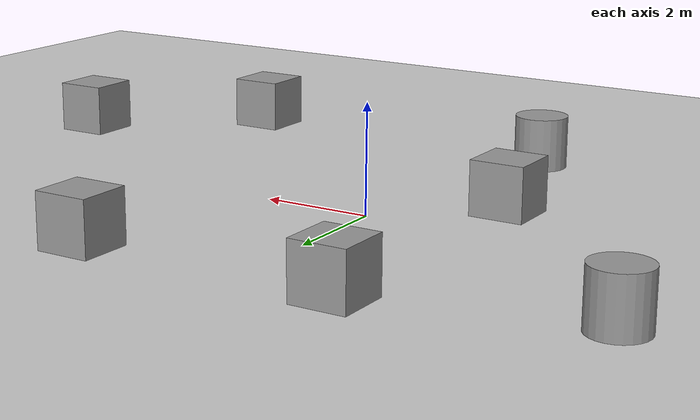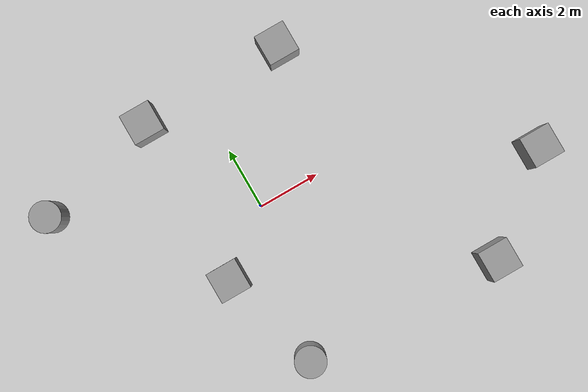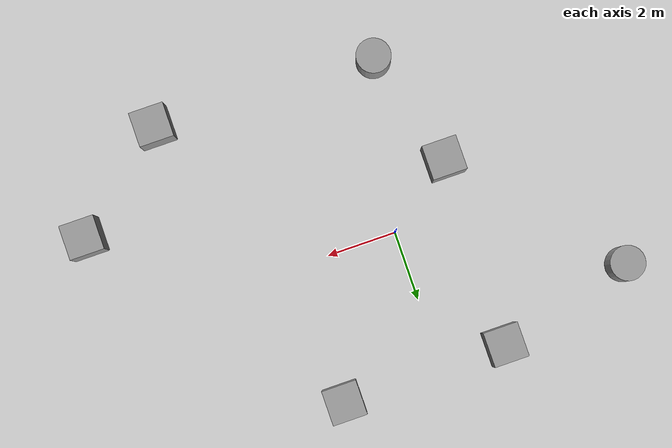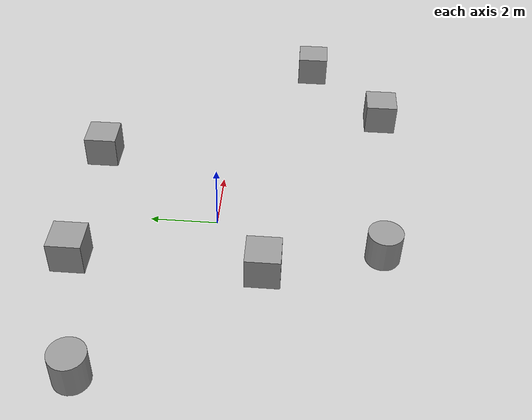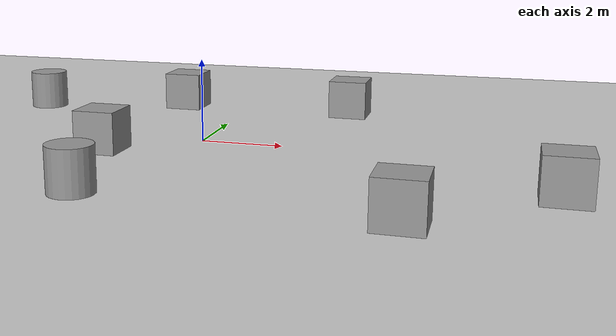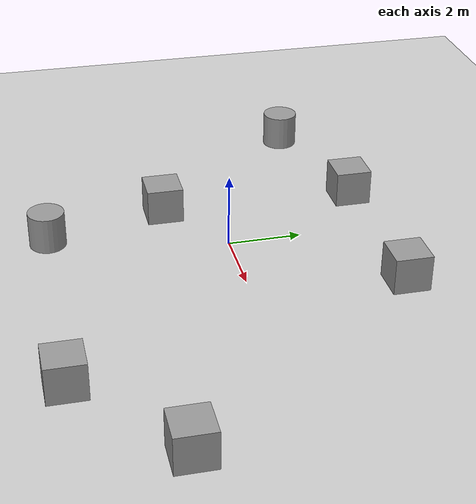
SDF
<sdf version="1.6">
 <world name="default">
  <light name="sun" type="directional">
   <pose>0 0 10 0 -0 0</pose>
   <diffuse>0.8 0.8 0.8 1</diffuse>
   <specular>0.1 0.1 0.1 1</specular>
   <attenuation>
    <range>1000</range>
    <constant>0.9</constant>
    <linear>0.01</linear>
    <quadratic>0.001</quadratic>
   </attenuation>
   <direction>-0.5 0.5 -1</direction>
  </light>
  <model name="ground_plane">
   <static>1</static>
   <link name="link">
    <collision name="collision">
     <geometry><plane><normal>0 0 1</normal><size>100 100</size></plane></geometry>
     <surface><friction><ode><mu>100</mu><mu2>50</mu2></ode></friction></surface>
    </collision>
    <visual name="visual">
     <cast_shadows>0</cast_shadows>
     <geometry><plane><normal>0 0 1</normal><size>100 100</size></plane></geometry>
     <material>
      <script><uri>file://media/materials/scripts/gazebo.material</uri><name>Gazebo/Grey</name></script>
     </material>
    </visual>
   </link>
  </model>
  <gravity>0 0 -9.8</gravity>
  <magnetic_field>6e-06 2.3e-05 -4.2e-05</magnetic_field>
  <atmosphere type="adiabatic"/>
  <physics name="default_physics" default="0" type="ode">
   <max_step_size>0.001</max_step_size>
   <real_time_factor>1</real_time_factor>
   <real_time_update_rate>1000</real_time_update_rate>
  </physics>
  <scene><ambient>0.4 0.4 0.4 1</ambient><background>0.7 0.7 0.7 1</background><shadows>1</shadows></scene>
  <spherical_coordinates>
   <surface_model>EARTH_WGS84</surface_model>
   <latitude_deg>0</latitude_deg>
   <longitude_deg>0</longitude_deg>
   <elevation>0</elevation>
   <heading_deg>0</heading_deg>
  </spherical_coordinates>
  <light name="sun_0" type="directional">
   <pose>29.6726 -23.1517 10 0 -0 0</pose>
   <diffuse>0.8 0.8 0.8 1</diffuse>
   <specular>0.1 0.1 0.1 1</specular>
   <attenuation>
    <range>1000</range>
    <constant>0.9</constant>
    <linear>0.01</linear>
    <quadratic>0.001</quadratic>
   </attenuation>
   <direction>-0.5 0.5 -1</direction>
  </light>
  <light name="sun_0" type="directional">
   <pose>-0.193885 -3.40803 10 0 -0 0</pose>
   <diffuse>0.8 0.8 0.8 1</diffuse>
   <specular>0.1 0.1 0.1 1</specular>
   <attenuation>
    <range>1000</range>
    <constant>0.9</constant>
    <linear>0.01</linear>
    <quadratic>0.001</quadratic>
   </attenuation>
   <direction>-0.5 0.5 -1</direction>
  </light>
  <model name="unit_box_0">
   <pose>-1.95957 -1.48289 0.499995 0 1e-05 0</pose>
   <link name="link">
    <inertial>
     <mass>1</mass>
     <inertia>
      <ixx>0.166667</ixx>
      <ixy>0</ixy>
      <ixz>0</ixz>
      <iyy>0.166667</iyy>
      <iyz>0</iyz>
      <izz>0.166667</izz>
     </inertia>
    </inertial>
    <collision name="collision"><geometry><box><size>1 1 1</size></box></geometry></collision>
    <visual name="visual">
     <geometry><box><size>1 1 1</size></box></geometry>
     <material>
      <script><name>Gazebo/Grey</name><uri>file://media/materials/scripts/gazebo.material</uri></script>
     </material>
    </visual>
   </link>
  </model>
  <model name="unit_cylinder_0">
   <pose>-5.7837 2.96078 0.499998 3e-06 -4e-06 0</pose>
   <link name="link">
    <inertial>
     <mass>1</mass>
     <inertia><ixx>0.145833</ixx><ixy>0</ixy><ixz>0</ixz><iyy>0.145833</iyy><iyz>0</iyz><izz>0.125</izz></inertia>
    </inertial>
    <collision name="collision">
     <geometry><cylinder><radius>0.5</radius><length>1</length></cylinder></geometry>
    </collision>
    <visual name="visual">
     <geometry><cylinder><radius>0.5</radius><length>1</length></cylinder></geometry>
     <material>
      <script><name>Gazebo/Grey</name><uri>file://media/materials/scripts/gazebo.material</uri></script>
     </material>
    </visual>
   </link>
  </model>
  <model name="unit_box_1">
   <pose>-1.84251 3.97792 0.499995 0 1e-05 0</pose>
   <link name="link">
    <inertial>
     <mass>1</mass>
     <inertia>
      <ixx>0.166667</ixx>
      <ixy>0</ixy>
      <ixz>0</ixz>
      <iyy>0.166667</iyy>
      <iyz>0</iyz>
      <izz>0.166667</izz>
     </inertia>
    </inertial>
    <collision name="collision"><geometry><box><size>1 1 1</size></box></geometry></collision>
    <visual name="visual">
     <geometry><box><size>1 1 1</size></box></geometry>
     <material>
      <script><name>Gazebo/Grey</name><uri>file://media/materials/scripts/gazebo.material</uri></script>
     </material>
    </visual>
   </link>
  </model>
  <model name="unit_cylinder_1">
   <pose>-1.03194 -4.83199 0.499993 -3e-06 -3e-06 0</pose>
   <link name="link">
    <inertial>
     <mass>1</mass>
     <inertia><ixx>0.145833</ixx><ixy>0</ixy><ixz>0</ixz><iyy>0.145833</iyy><iyz>0</iyz><izz>0.125</izz></inertia>
    </inertial>
    <collision name="collision">
     <geometry><cylinder><radius>0.5</radius><length>1</length></cylinder></geometry>
    </collision>
    <visual name="visual">
     <geometry><cylinder><radius>0.5</radius><length>1</length></cylinder></geometry>
     <material>
      <script><name>Gazebo/Grey</name><uri>file://media/materials/scripts/gazebo.material</uri></script>
     </material>
    </visual>
   </link>
  </model>
  <model name="unit_box_2">
   <pose>5.45787 -5.04072 0.499995 0 1e-05 0</pose>
   <link name="link">
    <inertial>
     <mass>1</mass>
     <inertia>
      <ixx>0.166667</ixx>
      <ixy>0</ixy>
      <ixz>0</ixz>
      <iyy>0.166667</iyy>
      <iyz>0</iyz>
      <izz>0.166667</izz>
     </inertia>
    </inertial>
    <collision name="collision"><geometry><box><size>1 1 1</size></box></geometry></collision>
    <visual name="visual">
     <geometry><box><size>1 1 1</size></box></geometry>
     <material>
      <script><name>Gazebo/Grey</name><uri>file://media/materials/scripts/gazebo.material</uri></script>
     </material>
    </visual>
   </link>
  </model>
  <model name="unit_box_3">
   <pose>2.90415 4.02391 0.499995 -1e-05 0 0</pose>
   <link name="link">
    <inertial>
     <mass>1</mass>
     <inertia>
      <ixx>0.166667</ixx>
      <ixy>0</ixy>
      <ixz>0</ixz>
      <iyy>0.166667</iyy>
      <iyz>0</iyz>
      <izz>0.166667</izz>
     </inertia>
    </inertial>
    <collision name="collision"><geometry><box><size>1 1 1</size></box></geometry></collision>
    <visual name="visual">
     <geometry><box><size>1 1 1</size></box></geometry>
     <material>
      <script><name>Gazebo/Grey</name><uri>file://media/materials/scripts/gazebo.material</uri></script>
     </material>
    </visual>
   </link>
  </model>
  <model name="unit_box_4">
   <pose>8.29714 -2.68832 0.5 0 -0 0</pose>
   <link name="link">
    <inertial>
     <mass>1</mass>
     <inertia>
      <ixx>0.166667</ixx>
      <ixy>0</ixy>
      <ixz>0</ixz>
      <iyy>0.166667</iyy>
      <iyz>0</iyz>
      <izz>0.166667</izz>
     </inertia>
    </inertial>
    <collision name="collision"><geometry><box><size>1 1 1</size></box></geometry></collision>
    <visual name="visual">
     <geometry><box><size>1 1 1</size></box></geometry>
     <material>
      <script><name>Gazebo/Grey</name><uri>file://media/materials/scripts/gazebo.material</uri></script>
     </material>
    </visual>
   </link>
  </model>
 </world>
</sdf>
